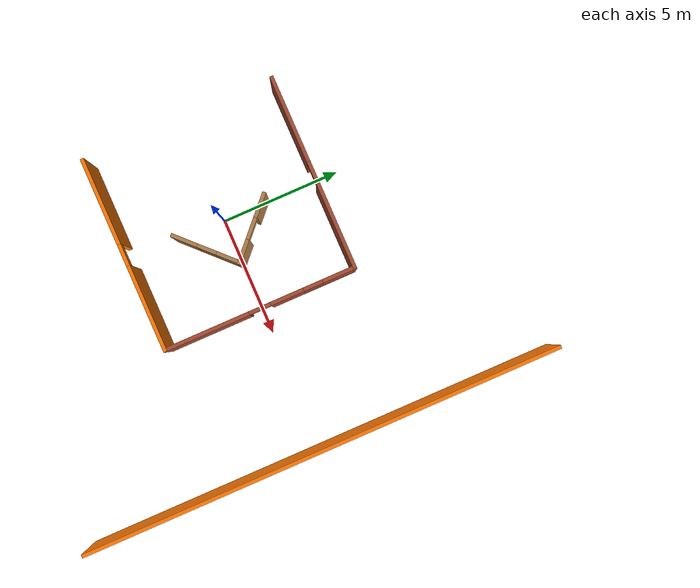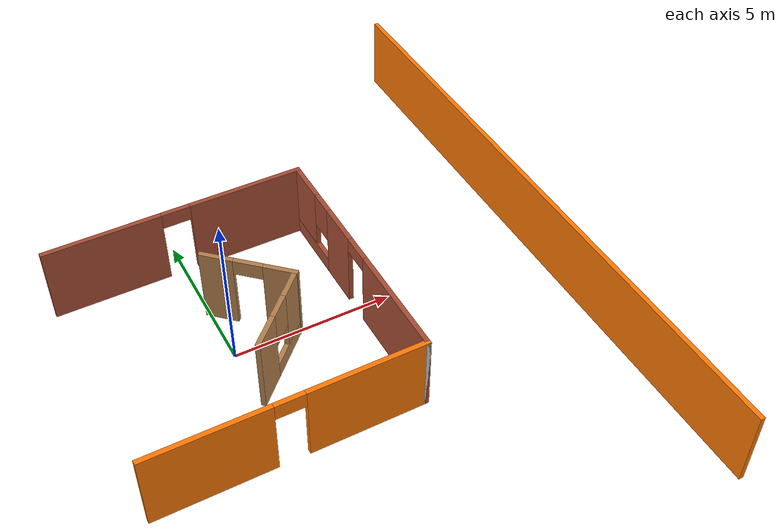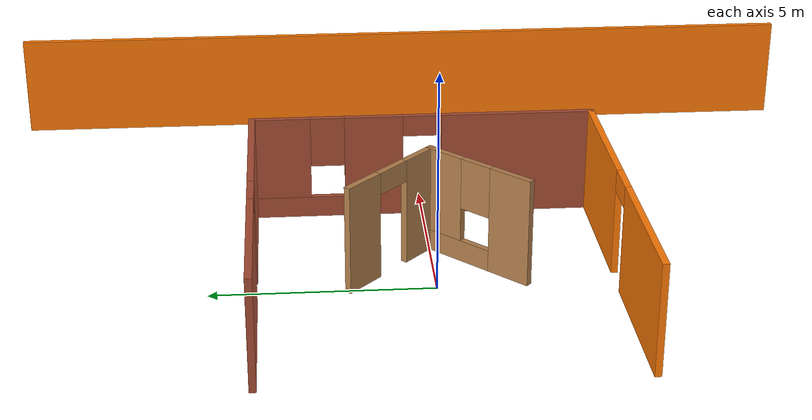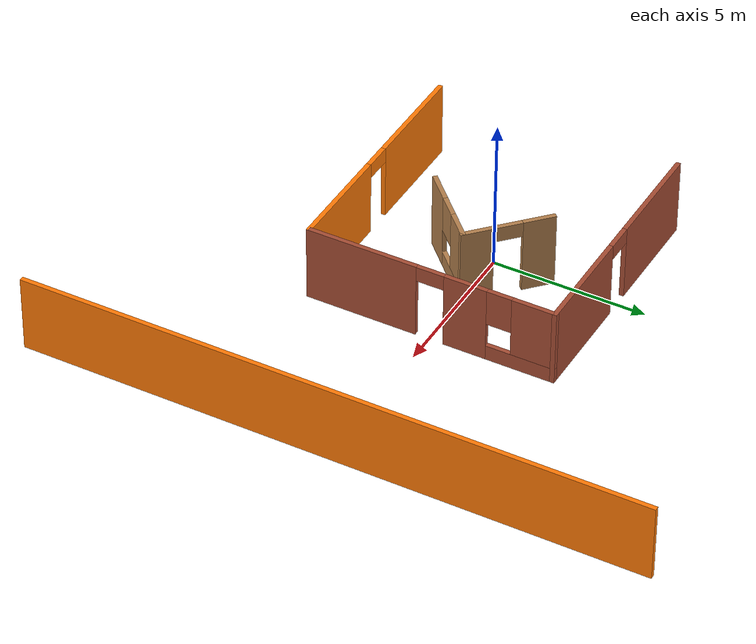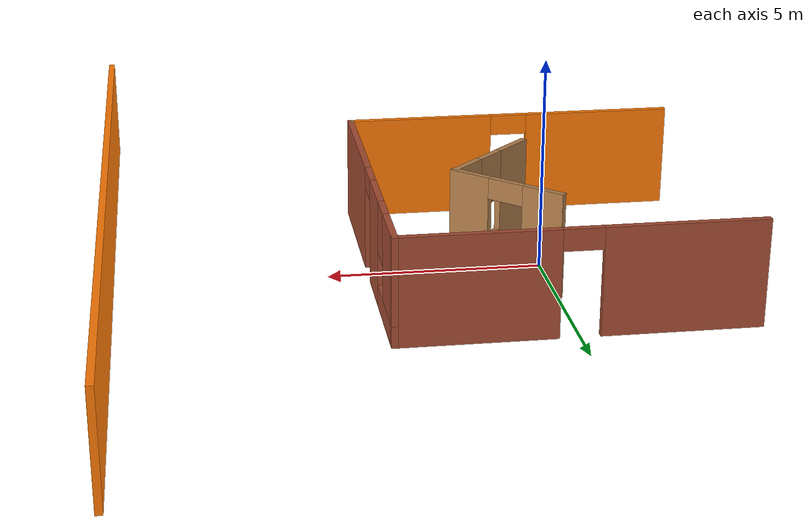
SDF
<sdf version="1.6">
 <model name="walls">
  <link name="Wall_45">
   <pose>10 0 0 0 -0 1.5708</pose>
   <visual name="Wall_45_Visual">
    <pose>0 0 1.25 0 -0 0</pose>
    <geometry><box><size>20.15 0.15 2.5</size></box></geometry>
    <material>
     <script><uri>file://media/materials/scripts/gazebo.material</uri><name>Gazebo/Grey</name></script>
     <ambient>0.996078 0.47451 0.0196078 1</ambient>
     <shader type="pixel"/>
     <diffuse>0.7 0.7 0.7 1</diffuse>
     <specular>0.01 0.01 0.01 1</specular>
     <emissive>0 0 0 1</emissive>
    </material>
    <meta><layer>0</layer></meta>
   </visual>
   <collision name="Wall_45_Collision">
    <pose>0 0 1.25 0 -0 0</pose>
    <geometry><box><size>20.15 0.15 2.5</size></box></geometry>
    <surface>
     <friction>
      <ode><mu>1</mu><mu2>1</mu2><fdir1>0 0 0</fdir1><slip1>0</slip1><slip2>0</slip2></ode>
      <torsional>
       <coefficient>1</coefficient>
       <patch_radius>0</patch_radius>
       <surface_radius>0</surface_radius>
       <use_patch_radius>1</use_patch_radius>
       <ode><slip>0</slip></ode>
      </torsional>
     </friction>
     <bounce><restitution_coefficient>0</restitution_coefficient><threshold>1e+06</threshold></bounce>
     <contact>
      <collide_without_contact>0</collide_without_contact>
      <collide_without_contact_bitmask>1</collide_without_contact_bitmask>
      <collide_bitmask>1</collide_bitmask>
      <ode>
       <soft_cfm>0</soft_cfm>
       <soft_erp>0.2</soft_erp>
       <kp>1e+13</kp>
       <kd>1</kd>
       <max_vel>0.01</max_vel>
       <min_depth>0</min_depth>
      </ode>
      <bullet>
       <split_impulse>1</split_impulse>
       <split_impulse_penetration_threshold>-0.01</split_impulse_penetration_threshold>
       <soft_cfm>0</soft_cfm>
       <soft_erp>0.2</soft_erp>
       <kp>1e+13</kp>
       <kd>1</kd>
      </bullet>
     </contact>
    </surface>
   </collision>
  </link>
  <link name="Wall_50">
   <pose>0 -4 0 0 -0 0</pose>
   <visual name="Wall_50_Visual_0">
    <pose>-2.2625 0 1.25 0 -0 0</pose>
    <geometry><box><size>3.625 0.15 2.5</size></box></geometry>
    <material>
     <script><uri>file://media/materials/scripts/gazebo.material</uri><name>Gazebo/Grey</name></script>
     <ambient>0.996078 0.47451 0.0196078 1</ambient>
     <shader type="pixel"/>
     <diffuse>0.7 0.7 0.7 1</diffuse>
     <specular>0.01 0.01 0.01 1</specular>
     <emissive>0 0 0 1</emissive>
    </material>
    <meta><layer>0</layer></meta>
   </visual>
   <visual name="Wall_50_Visual_1">
    <pose>2.2625 0 1.25 0 -0 0</pose>
    <geometry><box><size>3.625 0.15 2.5</size></box></geometry>
    <material>
     <script><uri>file://media/materials/scripts/gazebo.material</uri><name>Gazebo/Grey</name></script>
     <ambient>0.996078 0.47451 0.0196078 1</ambient>
     <shader type="pixel"/>
     <diffuse>0.7 0.7 0.7 1</diffuse>
     <specular>0.01 0.01 0.01 1</specular>
     <emissive>0 0 0 1</emissive>
    </material>
    <meta><layer>0</layer></meta>
   </visual>
   <visual name="Wall_50_Visual_2">
    <pose>0 0 2.25 0 -0 0</pose>
    <geometry><box><size>0.9 0.15 0.5</size></box></geometry>
    <material>
     <script><uri>file://media/materials/scripts/gazebo.material</uri><name>Gazebo/Grey</name></script>
     <ambient>0.996078 0.47451 0.0196078 1</ambient>
     <shader type="pixel"/>
     <diffuse>0.7 0.7 0.7 1</diffuse>
     <specular>0.01 0.01 0.01 1</specular>
     <emissive>0 0 0 1</emissive>
    </material>
    <meta><layer>0</layer></meta>
   </visual>
   <collision name="Wall_50_Collision_0">
    <pose>-2.2625 0 1.25 0 -0 0</pose>
    <geometry><box><size>3.625 0.15 2.5</size></box></geometry>
    <surface>
     <friction>
      <ode><mu>1</mu><mu2>1</mu2><fdir1>0 0 0</fdir1><slip1>0</slip1><slip2>0</slip2></ode>
      <torsional>
       <coefficient>1</coefficient>
       <patch_radius>0</patch_radius>
       <surface_radius>0</surface_radius>
       <use_patch_radius>1</use_patch_radius>
       <ode><slip>0</slip></ode>
      </torsional>
     </friction>
     <bounce><restitution_coefficient>0</restitution_coefficient><threshold>1e+06</threshold></bounce>
     <contact>
      <collide_without_contact>0</collide_without_contact>
      <collide_without_contact_bitmask>1</collide_without_contact_bitmask>
      <collide_bitmask>1</collide_bitmask>
      <ode>
       <soft_cfm>0</soft_cfm>
       <soft_erp>0.2</soft_erp>
       <kp>1e+13</kp>
       <kd>1</kd>
       <max_vel>0.01</max_vel>
       <min_depth>0</min_depth>
      </ode>
      <bullet>
       <split_impulse>1</split_impulse>
       <split_impulse_penetration_threshold>-0.01</split_impulse_penetration_threshold>
       <soft_cfm>0</soft_cfm>
       <soft_erp>0.2</soft_erp>
       <kp>1e+13</kp>
       <kd>1</kd>
      </bullet>
     </contact>
    </surface>
   </collision>
   <collision name="Wall_50_Collision_1">
    <pose>2.2625 0 1.25 0 -0 0</pose>
    <geometry><box><size>3.625 0.15 2.5</size></box></geometry>
    <surface>
     <friction>
      <ode><mu>1</mu><mu2>1</mu2><fdir1>0 0 0</fdir1><slip1>0</slip1><slip2>0</slip2></ode>
      <torsional>
       <coefficient>1</coefficient>
       <patch_radius>0</patch_radius>
       <surface_radius>0</surface_radius>
       <use_patch_radius>1</use_patch_radius>
       <ode><slip>0</slip></ode>
      </torsional>
     </friction>
     <bounce><restitution_coefficient>0</restitution_coefficient><threshold>1e+06</threshold></bounce>
     <contact>
      <collide_without_contact>0</collide_without_contact>
      <collide_without_contact_bitmask>1</collide_without_contact_bitmask>
      <collide_bitmask>1</collide_bitmask>
      <ode>
       <soft_cfm>0</soft_cfm>
       <soft_erp>0.2</soft_erp>
       <kp>1e+13</kp>
       <kd>1</kd>
       <max_vel>0.01</max_vel>
       <min_depth>0</min_depth>
      </ode>
      <bullet>
       <split_impulse>1</split_impulse>
       <split_impulse_penetration_threshold>-0.01</split_impulse_penetration_threshold>
       <soft_cfm>0</soft_cfm>
       <soft_erp>0.2</soft_erp>
       <kp>1e+13</kp>
       <kd>1</kd>
      </bullet>
     </contact>
    </surface>
   </collision>
   <collision name="Wall_50_Collision_2">
    <pose>0 0 2.25 0 -0 0</pose>
    <geometry><box><size>0.9 0.15 0.5</size></box></geometry>
    <surface>
     <friction>
      <ode><mu>1</mu><mu2>1</mu2><fdir1>0 0 0</fdir1><slip1>0</slip1><slip2>0</slip2></ode>
      <torsional>
       <coefficient>1</coefficient>
       <patch_radius>0</patch_radius>
       <surface_radius>0</surface_radius>
       <use_patch_radius>1</use_patch_radius>
       <ode><slip>0</slip></ode>
      </torsional>
     </friction>
     <bounce><restitution_coefficient>0</restitution_coefficient><threshold>1e+06</threshold></bounce>
     <contact>
      <collide_without_contact>0</collide_without_contact>
      <collide_without_contact_bitmask>1</collide_without_contact_bitmask>
      <collide_bitmask>1</collide_bitmask>
      <ode>
       <soft_cfm>0</soft_cfm>
       <soft_erp>0.2</soft_erp>
       <kp>1e+13</kp>
       <kd>1</kd>
       <max_vel>0.01</max_vel>
       <min_depth>0</min_depth>
      </ode>
      <bullet>
       <split_impulse>1</split_impulse>
       <split_impulse_penetration_threshold>-0.01</split_impulse_penetration_threshold>
       <soft_cfm>0</soft_cfm>
       <soft_erp>0.2</soft_erp>
       <kp>1e+13</kp>
       <kd>1</kd>
      </bullet>
     </contact>
    </surface>
   </collision>
  </link>
  <link name="Wall_51">
   <pose>4 -4 0 0 -0 0</pose>
   <visual name="Wall_51_Visual">
    <pose>0 0 1.25 0 -0 0</pose>
    <geometry><box><size>0.15 0.15 2.5</size></box></geometry>
    <material>
     <script><uri>file://media/materials/scripts/gazebo.material</uri><name>Gazebo/CeilingTiled</name></script>
     <ambient>0.435294 0.796078 0.67451 1</ambient>
     <shader type="pixel"/>
     <diffuse>1 1 1 1</diffuse>
     <specular>0 0 0 1</specular>
     <emissive>0 0 0 1</emissive>
    </material>
    <meta><layer>0</layer></meta>
   </visual>
   <collision name="Wall_51_Collision">
    <pose>0 0 1.25 0 -0 0</pose>
    <geometry><box><size>0.15 0.15 2.5</size></box></geometry>
    <surface>
     <friction>
      <ode><mu>1</mu><mu2>1</mu2><fdir1>0 0 0</fdir1><slip1>0</slip1><slip2>0</slip2></ode>
      <torsional>
       <coefficient>1</coefficient>
       <patch_radius>0</patch_radius>
       <surface_radius>0</surface_radius>
       <use_patch_radius>1</use_patch_radius>
       <ode><slip>0</slip></ode>
      </torsional>
     </friction>
     <bounce><restitution_coefficient>0</restitution_coefficient><threshold>1e+06</threshold></bounce>
     <contact>
      <collide_without_contact>0</collide_without_contact>
      <collide_without_contact_bitmask>1</collide_without_contact_bitmask>
      <collide_bitmask>1</collide_bitmask>
      <ode>
       <soft_cfm>0</soft_cfm>
       <soft_erp>0.2</soft_erp>
       <kp>1e+13</kp>
       <kd>1</kd>
       <max_vel>0.01</max_vel>
       <min_depth>0</min_depth>
      </ode>
      <bullet>
       <split_impulse>1</split_impulse>
       <split_impulse_penetration_threshold>-0.01</split_impulse_penetration_threshold>
       <soft_cfm>0</soft_cfm>
       <soft_erp>0.2</soft_erp>
       <kp>1e+13</kp>
       <kd>1</kd>
      </bullet>
     </contact>
    </surface>
   </collision>
  </link>
  <link name="Wall_52">
   <pose>4 0 0 0 -0 1.5708</pose>
   <visual name="Wall_52_Visual_0">
    <pose>-2.2608 0 1.25 0 -0 0</pose>
    <geometry><box><size>3.6284 0.15 2.5</size></box></geometry>
    <material>
     <script><uri>file://media/materials/scripts/gazebo.material</uri><name>Gazebo/Bricks</name></script>
     <ambient>1 1 1 1</ambient>
     <shader type="pixel"/>
     <diffuse>1 1 1 1</diffuse>
     <specular>0.2 0.2 0.2 1</specular>
     <emissive>0 0 0 1</emissive>
    </material>
    <meta><layer>0</layer></meta>
   </visual>
   <visual name="Wall_52_Visual_1">
    <pose>1.14751 0 1.25 0 -0 0</pose>
    <geometry><box><size>1.38822 0.15 2.5</size></box></geometry>
    <material>
     <script><uri>file://media/materials/scripts/gazebo.material</uri><name>Gazebo/Bricks</name></script>
     <ambient>1 1 1 1</ambient>
     <shader type="pixel"/>
     <diffuse>1 1 1 1</diffuse>
     <specular>0.2 0.2 0.2 1</specular>
     <emissive>0 0 0 1</emissive>
    </material>
    <meta><layer>0</layer></meta>
   </visual>
   <visual name="Wall_52_Visual_2">
    <pose>2.95831 0 0.25 0 -0 0</pose>
    <geometry><box><size>2.23338 0.15 0.5</size></box></geometry>
    <material>
     <script><uri>file://media/materials/scripts/gazebo.material</uri><name>Gazebo/Bricks</name></script>
     <ambient>1 1 1 1</ambient>
     <shader type="pixel"/>
     <diffuse>1 1 1 1</diffuse>
     <specular>0.2 0.2 0.2 1</specular>
     <emissive>0 0 0 1</emissive>
    </material>
    <meta><layer>0</layer></meta>
   </visual>
   <visual name="Wall_52_Visual_3">
    <pose>3.35831 0 1.5 0 -0 0</pose>
    <geometry><box><size>1.43338 0.15 2</size></box></geometry>
    <material>
     <script><uri>file://media/materials/scripts/gazebo.material</uri><name>Gazebo/Bricks</name></script>
     <ambient>1 1 1 1</ambient>
     <shader type="pixel"/>
     <diffuse>1 1 1 1</diffuse>
     <specular>0.2 0.2 0.2 1</specular>
     <emissive>0 0 0 1</emissive>
    </material>
    <meta><layer>0</layer></meta>
   </visual>
   <visual name="Wall_52_Visual_4">
    <pose>2.24162 0 1.9 0 -0 0</pose>
    <geometry><box><size>0.8 0.15 1.2</size></box></geometry>
    <material>
     <script><uri>file://media/materials/scripts/gazebo.material</uri><name>Gazebo/Bricks</name></script>
     <ambient>1 1 1 1</ambient>
     <shader type="pixel"/>
     <diffuse>1 1 1 1</diffuse>
     <specular>0.2 0.2 0.2 1</specular>
     <emissive>0 0 0 1</emissive>
    </material>
    <meta><layer>0</layer></meta>
   </visual>
   <visual name="Wall_52_Visual_5">
    <pose>0.003404 0 2.25 0 -0 0</pose>
    <geometry><box><size>0.9 0.15 0.5</size></box></geometry>
    <material>
     <script><uri>file://media/materials/scripts/gazebo.material</uri><name>Gazebo/Bricks</name></script>
     <ambient>1 1 1 1</ambient>
     <shader type="pixel"/>
     <diffuse>1 1 1 1</diffuse>
     <specular>0.2 0.2 0.2 1</specular>
     <emissive>0 0 0 1</emissive>
    </material>
    <meta><layer>0</layer></meta>
   </visual>
   <collision name="Wall_52_Collision_0">
    <pose>-2.2608 0 1.25 0 -0 0</pose>
    <geometry><box><size>3.6284 0.15 2.5</size></box></geometry>
    <surface>
     <friction>
      <ode><mu>1</mu><mu2>1</mu2><fdir1>0 0 0</fdir1><slip1>0</slip1><slip2>0</slip2></ode>
      <torsional>
       <coefficient>1</coefficient>
       <patch_radius>0</patch_radius>
       <surface_radius>0</surface_radius>
       <use_patch_radius>1</use_patch_radius>
       <ode><slip>0</slip></ode>
      </torsional>
     </friction>
     <bounce><restitution_coefficient>0</restitution_coefficient><threshold>1e+06</threshold></bounce>
     <contact>
      <collide_without_contact>0</collide_without_contact>
      <collide_without_contact_bitmask>1</collide_without_contact_bitmask>
      <collide_bitmask>1</collide_bitmask>
      <ode>
       <soft_cfm>0</soft_cfm>
       <soft_erp>0.2</soft_erp>
       <kp>1e+13</kp>
       <kd>1</kd>
       <max_vel>0.01</max_vel>
       <min_depth>0</min_depth>
      </ode>
      <bullet>
       <split_impulse>1</split_impulse>
       <split_impulse_penetration_threshold>-0.01</split_impulse_penetration_threshold>
       <soft_cfm>0</soft_cfm>
       <soft_erp>0.2</soft_erp>
       <kp>1e+13</kp>
       <kd>1</kd>
      </bullet>
     </contact>
    </surface>
   </collision>
   <collision name="Wall_52_Collision_1">
    <pose>1.14751 0 1.25 0 -0 0</pose>
    <geometry><box><size>1.38822 0.15 2.5</size></box></geometry>
    <surface>
     <friction>
      <ode><mu>1</mu><mu2>1</mu2><fdir1>0 0 0</fdir1><slip1>0</slip1><slip2>0</slip2></ode>
      <torsional>
       <coefficient>1</coefficient>
       <patch_radius>0</patch_radius>
       <surface_radius>0</surface_radius>
       <use_patch_radius>1</use_patch_radius>
       <ode><slip>0</slip></ode>
      </torsional>
     </friction>
     <bounce><restitution_coefficient>0</restitution_coefficient><threshold>1e+06</threshold></bounce>
     <contact>
      <collide_without_contact>0</collide_without_contact>
      <collide_without_contact_bitmask>1</collide_without_contact_bitmask>
      <collide_bitmask>1</collide_bitmask>
      <ode>
       <soft_cfm>0</soft_cfm>
       <soft_erp>0.2</soft_erp>
       <kp>1e+13</kp>
       <kd>1</kd>
       <max_vel>0.01</max_vel>
       <min_depth>0</min_depth>
      </ode>
      <bullet>
       <split_impulse>1</split_impulse>
       <split_impulse_penetration_threshold>-0.01</split_impulse_penetration_threshold>
       <soft_cfm>0</soft_cfm>
       <soft_erp>0.2</soft_erp>
       <kp>1e+13</kp>
       <kd>1</kd>
      </bullet>
     </contact>
    </surface>
   </collision>
   <collision name="Wall_52_Collision_2">
    <pose>2.95831 0 0.25 0 -0 0</pose>
    <geometry><box><size>2.23338 0.15 0.5</size></box></geometry>
    <surface>
     <friction>
      <ode><mu>1</mu><mu2>1</mu2><fdir1>0 0 0</fdir1><slip1>0</slip1><slip2>0</slip2></ode>
      <torsional>
       <coefficient>1</coefficient>
       <patch_radius>0</patch_radius>
       <surface_radius>0</surface_radius>
       <use_patch_radius>1</use_patch_radius>
       <ode><slip>0</slip></ode>
      </torsional>
     </friction>
     <bounce><restitution_coefficient>0</restitution_coefficient><threshold>1e+06</threshold></bounce>
     <contact>
      <collide_without_contact>0</collide_without_contact>
      <collide_without_contact_bitmask>1</collide_without_contact_bitmask>
      <collide_bitmask>1</collide_bitmask>
      <ode>
       <soft_cfm>0</soft_cfm>
       <soft_erp>0.2</soft_erp>
       <kp>1e+13</kp>
       <kd>1</kd>
       <max_vel>0.01</max_vel>
       <min_depth>0</min_depth>
      </ode>
      <bullet>
       <split_impulse>1</split_impulse>
       <split_impulse_penetration_threshold>-0.01</split_impulse_penetration_threshold>
       <soft_cfm>0</soft_cfm>
       <soft_erp>0.2</soft_erp>
       <kp>1e+13</kp>
       <kd>1</kd>
      </bullet>
     </contact>
    </surface>
   </collision>
   <collision name="Wall_52_Collision_3">
    <pose>3.35831 0 1.5 0 -0 0</pose>
    <geometry><box><size>1.43338 0.15 2</size></box></geometry>
    <surface>
     <friction>
      <ode><mu>1</mu><mu2>1</mu2><fdir1>0 0 0</fdir1><slip1>0</slip1><slip2>0</slip2></ode>
      <torsional>
       <coefficient>1</coefficient>
       <patch_radius>0</patch_radius>
       <surface_radius>0</surface_radius>
       <use_patch_radius>1</use_patch_radius>
       <ode><slip>0</slip></ode>
      </torsional>
     </friction>
     <bounce><restitution_coefficient>0</restitution_coefficient><threshold>1e+06</threshold></bounce>
     <contact>
      <collide_without_contact>0</collide_without_contact>
      <collide_without_contact_bitmask>1</collide_without_contact_bitmask>
      <collide_bitmask>1</collide_bitmask>
      <ode>
       <soft_cfm>0</soft_cfm>
       <soft_erp>0.2</soft_erp>
       <kp>1e+13</kp>
       <kd>1</kd>
       <max_vel>0.01</max_vel>
       <min_depth>0</min_depth>
      </ode>
      <bullet>
       <split_impulse>1</split_impulse>
       <split_impulse_penetration_threshold>-0.01</split_impulse_penetration_threshold>
       <soft_cfm>0</soft_cfm>
       <soft_erp>0.2</soft_erp>
       <kp>1e+13</kp>
       <kd>1</kd>
      </bullet>
     </contact>
    </surface>
   </collision>
   <collision name="Wall_52_Collision_5">
    <pose>0.003404 0 2.25 0 -0 0</pose>
    <geometry><box><size>0.9 0.15 0.5</size></box></geometry>
    <surface>
     <friction>
      <ode><mu>1</mu><mu2>1</mu2><fdir1>0 0 0</fdir1><slip1>0</slip1><slip2>0</slip2></ode>
      <torsional>
       <coefficient>1</coefficient>
       <patch_radius>0</patch_radius>
       <surface_radius>0</surface_radius>
       <use_patch_radius>1</use_patch_radius>
       <ode><slip>0</slip></ode>
      </torsional>
     </friction>
     <bounce><restitution_coefficient>0</restitution_coefficient><threshold>1e+06</threshold></bounce>
     <contact>
      <collide_without_contact>0</collide_without_contact>
      <collide_without_contact_bitmask>1</collide_without_contact_bitmask>
      <collide_bitmask>1</collide_bitmask>
      <ode>
       <soft_cfm>0</soft_cfm>
       <soft_erp>0.2</soft_erp>
       <kp>1e+13</kp>
       <kd>1</kd>
       <max_vel>0.01</max_vel>
       <min_depth>0</min_depth>
      </ode>
      <bullet>
       <split_impulse>1</split_impulse>
       <split_impulse_penetration_threshold>-0.01</split_impulse_penetration_threshold>
       <soft_cfm>0</soft_cfm>
       <soft_erp>0.2</soft_erp>
       <kp>1e+13</kp>
       <kd>1</kd>
      </bullet>
     </contact>
    </surface>
   </collision>
   <collision name="Wall_52_Collision_4">
    <pose>2.24162 0 1.9 0 -0 0</pose>
    <geometry><box><size>0.8 0.15 1.2</size></box></geometry>
    <surface>
     <friction>
      <ode><mu>1</mu><mu2>1</mu2><fdir1>0 0 0</fdir1><slip1>0</slip1><slip2>0</slip2></ode>
      <torsional>
       <coefficient>1</coefficient>
       <patch_radius>0</patch_radius>
       <surface_radius>0</surface_radius>
       <use_patch_radius>1</use_patch_radius>
       <ode><slip>0</slip></ode>
      </torsional>
     </friction>
     <bounce><restitution_coefficient>0</restitution_coefficient><threshold>1e+06</threshold></bounce>
     <contact>
      <collide_without_contact>0</collide_without_contact>
      <collide_without_contact_bitmask>1</collide_without_contact_bitmask>
      <collide_bitmask>1</collide_bitmask>
      <ode>
       <soft_cfm>0</soft_cfm>
       <soft_erp>0.2</soft_erp>
       <kp>1e+13</kp>
       <kd>1</kd>
       <max_vel>0.01</max_vel>
       <min_depth>0</min_depth>
      </ode>
      <bullet>
       <split_impulse>1</split_impulse>
       <split_impulse_penetration_threshold>-0.01</split_impulse_penetration_threshold>
       <soft_cfm>0</soft_cfm>
       <soft_erp>0.2</soft_erp>
       <kp>1e+13</kp>
       <kd>1</kd>
      </bullet>
     </contact>
    </surface>
   </collision>
  </link>
  <link name="Wall_54">
   <pose>0 4 0 0 -0 3.14159</pose>
   <visual name="Wall_54_Visual_0">
    <pose>-2.2625 0 1.25 0 -0 0</pose>
    <geometry><box><size>3.625 0.15 2.5</size></box></geometry>
    <material>
     <script><uri>file://media/materials/scripts/gazebo.material</uri><name>Gazebo/Bricks</name></script>
     <ambient>1 1 1 1</ambient>
     <shader type="pixel"/>
     <diffuse>1 1 1 1</diffuse>
     <specular>0.2 0.2 0.2 1</specular>
     <emissive>0 0 0 1</emissive>
    </material>
    <meta><layer>0</layer></meta>
   </visual>
   <visual name="Wall_54_Visual_1">
    <pose>2.2625 0 1.25 0 -0 0</pose>
    <geometry><box><size>3.625 0.15 2.5</size></box></geometry>
    <material>
     <script><uri>file://media/materials/scripts/gazebo.material</uri><name>Gazebo/Bricks</name></script>
     <ambient>1 1 1 1</ambient>
     <shader type="pixel"/>
     <diffuse>1 1 1 1</diffuse>
     <specular>0.2 0.2 0.2 1</specular>
     <emissive>0 0 0 1</emissive>
    </material>
    <meta><layer>0</layer></meta>
   </visual>
   <visual name="Wall_54_Visual_2">
    <pose>0 0 2.25 0 -0 0</pose>
    <geometry><box><size>0.9 0.15 0.5</size></box></geometry>
    <material>
     <script><uri>file://media/materials/scripts/gazebo.material</uri><name>Gazebo/Bricks</name></script>
     <ambient>1 1 1 1</ambient>
     <shader type="pixel"/>
     <diffuse>1 1 1 1</diffuse>
     <specular>0.2 0.2 0.2 1</specular>
     <emissive>0 0 0 1</emissive>
    </material>
    <meta><layer>0</layer></meta>
   </visual>
   <collision name="Wall_54_Collision_0">
    <pose>-2.2625 0 1.25 0 -0 0</pose>
    <geometry><box><size>3.625 0.15 2.5</size></box></geometry>
    <surface>
     <friction>
      <ode><mu>1</mu><mu2>1</mu2><fdir1>0 0 0</fdir1><slip1>0</slip1><slip2>0</slip2></ode>
      <torsional>
       <coefficient>1</coefficient>
       <patch_radius>0</patch_radius>
       <surface_radius>0</surface_radius>
       <use_patch_radius>1</use_patch_radius>
       <ode><slip>0</slip></ode>
      </torsional>
     </friction>
     <bounce><restitution_coefficient>0</restitution_coefficient><threshold>1e+06</threshold></bounce>
     <contact>
      <collide_without_contact>0</collide_without_contact>
      <collide_without_contact_bitmask>1</collide_without_contact_bitmask>
      <collide_bitmask>1</collide_bitmask>
      <ode>
       <soft_cfm>0</soft_cfm>
       <soft_erp>0.2</soft_erp>
       <kp>1e+13</kp>
       <kd>1</kd>
       <max_vel>0.01</max_vel>
       <min_depth>0</min_depth>
      </ode>
      <bullet>
       <split_impulse>1</split_impulse>
       <split_impulse_penetration_threshold>-0.01</split_impulse_penetration_threshold>
       <soft_cfm>0</soft_cfm>
       <soft_erp>0.2</soft_erp>
       <kp>1e+13</kp>
       <kd>1</kd>
      </bullet>
     </contact>
    </surface>
   </collision>
   <collision name="Wall_54_Collision_1">
    <pose>2.2625 0 1.25 0 -0 0</pose>
    <geometry><box><size>3.625 0.15 2.5</size></box></geometry>
    <surface>
     <friction>
      <ode><mu>1</mu><mu2>1</mu2><fdir1>0 0 0</fdir1><slip1>0</slip1><slip2>0</slip2></ode>
      <torsional>
       <coefficient>1</coefficient>
       <patch_radius>0</patch_radius>
       <surface_radius>0</surface_radius>
       <use_patch_radius>1</use_patch_radius>
       <ode><slip>0</slip></ode>
      </torsional>
     </friction>
     <bounce><restitution_coefficient>0</restitution_coefficient><threshold>1e+06</threshold></bounce>
     <contact>
      <collide_without_contact>0</collide_without_contact>
      <collide_without_contact_bitmask>1</collide_without_contact_bitmask>
      <collide_bitmask>1</collide_bitmask>
      <ode>
       <soft_cfm>0</soft_cfm>
       <soft_erp>0.2</soft_erp>
       <kp>1e+13</kp>
       <kd>1</kd>
       <max_vel>0.01</max_vel>
       <min_depth>0</min_depth>
      </ode>
      <bullet>
       <split_impulse>1</split_impulse>
       <split_impulse_penetration_threshold>-0.01</split_impulse_penetration_threshold>
       <soft_cfm>0</soft_cfm>
       <soft_erp>0.2</soft_erp>
       <kp>1e+13</kp>
       <kd>1</kd>
      </bullet>
     </contact>
    </surface>
   </collision>
   <collision name="Wall_54_Collision_2">
    <pose>0 0 2.25 0 -0 0</pose>
    <geometry><box><size>0.9 0.15 0.5</size></box></geometry>
    <surface>
     <friction>
      <ode><mu>1</mu><mu2>1</mu2><fdir1>0 0 0</fdir1><slip1>0</slip1><slip2>0</slip2></ode>
      <torsional>
       <coefficient>1</coefficient>
       <patch_radius>0</patch_radius>
       <surface_radius>0</surface_radius>
       <use_patch_radius>1</use_patch_radius>
       <ode><slip>0</slip></ode>
      </torsional>
     </friction>
     <bounce><restitution_coefficient>0</restitution_coefficient><threshold>1e+06</threshold></bounce>
     <contact>
      <collide_without_contact>0</collide_without_contact>
      <collide_without_contact_bitmask>1</collide_without_contact_bitmask>
      <collide_bitmask>1</collide_bitmask>
      <ode>
       <soft_cfm>0</soft_cfm>
       <soft_erp>0.2</soft_erp>
       <kp>1e+13</kp>
       <kd>1</kd>
       <max_vel>0.01</max_vel>
       <min_depth>0</min_depth>
      </ode>
      <bullet>
       <split_impulse>1</split_impulse>
       <split_impulse_penetration_threshold>-0.01</split_impulse_penetration_threshold>
       <soft_cfm>0</soft_cfm>
       <soft_erp>0.2</soft_erp>
       <kp>1e+13</kp>
       <kd>1</kd>
      </bullet>
     </contact>
    </surface>
   </collision>
  </link>
  <link name="Wall_60">
   <pose>1.04341 -0.990461 0 0 -0 0.779305</pose>
   <visual name="Wall_60_Visual_0">
    <pose>-0.909688 0 1.25 0 -0 0</pose>
    <geometry><box><size>1.09783 0.15 2.5</size></box></geometry>
    <material>
     <script><uri>file://media/materials/scripts/gazebo.material</uri><name>Gazebo/Wood</name></script>
     <ambient>0.333333 0 1 1</ambient>
     <shader type="pixel"/>
     <diffuse>1 1 1 1</diffuse>
     <specular>0.2 0.2 0.2 1</specular>
     <emissive>0 0 0 1</emissive>
    </material>
    <meta><layer>0</layer></meta>
   </visual>
   <visual name="Wall_60_Visual_1">
    <pose>0.548916 0 0.25 0 -0 0</pose>
    <geometry><box><size>1.81938 0.15 0.5</size></box></geometry>
    <material>
     <script><uri>file://media/materials/scripts/gazebo.material</uri><name>Gazebo/Wood</name></script>
     <ambient>0.333333 0 1 1</ambient>
     <shader type="pixel"/>
     <diffuse>1 1 1 1</diffuse>
     <specular>0.2 0.2 0.2 1</specular>
     <emissive>0 0 0 1</emissive>
    </material>
    <meta><layer>0</layer></meta>
   </visual>
   <visual name="Wall_60_Visual_2">
    <pose>0.948916 0 1.5 0 -0 0</pose>
    <geometry><box><size>1.01938 0.15 2</size></box></geometry>
    <material>
     <script><uri>file://media/materials/scripts/gazebo.material</uri><name>Gazebo/Wood</name></script>
     <ambient>0.333333 0 1 1</ambient>
     <shader type="pixel"/>
     <diffuse>1 1 1 1</diffuse>
     <specular>0.2 0.2 0.2 1</specular>
     <emissive>0 0 0 1</emissive>
    </material>
    <meta><layer>0</layer></meta>
   </visual>
   <visual name="Wall_60_Visual_3">
    <pose>0.039229 0 1.9 0 -0 0</pose>
    <geometry><box><size>0.8 0.15 1.2</size></box></geometry>
    <material>
     <script><uri>file://media/materials/scripts/gazebo.material</uri><name>Gazebo/Wood</name></script>
     <ambient>0.333333 0 1 1</ambient>
     <shader type="pixel"/>
     <diffuse>1 1 1 1</diffuse>
     <specular>0.2 0.2 0.2 1</specular>
     <emissive>0 0 0 1</emissive>
    </material>
    <meta><layer>0</layer></meta>
   </visual>
   <collision name="Wall_60_Collision_0">
    <pose>-0.909688 0 1.25 0 -0 0</pose>
    <geometry><box><size>1.09783 0.15 2.5</size></box></geometry>
    <surface>
     <friction>
      <ode><mu>1</mu><mu2>1</mu2><fdir1>0 0 0</fdir1><slip1>0</slip1><slip2>0</slip2></ode>
      <torsional>
       <coefficient>1</coefficient>
       <patch_radius>0</patch_radius>
       <surface_radius>0</surface_radius>
       <use_patch_radius>1</use_patch_radius>
       <ode><slip>0</slip></ode>
      </torsional>
     </friction>
     <bounce><restitution_coefficient>0</restitution_coefficient><threshold>1e+06</threshold></bounce>
     <contact>
      <collide_without_contact>0</collide_without_contact>
      <collide_without_contact_bitmask>1</collide_without_contact_bitmask>
      <collide_bitmask>1</collide_bitmask>
      <ode>
       <soft_cfm>0</soft_cfm>
       <soft_erp>0.2</soft_erp>
       <kp>1e+13</kp>
       <kd>1</kd>
       <max_vel>0.01</max_vel>
       <min_depth>0</min_depth>
      </ode>
      <bullet>
       <split_impulse>1</split_impulse>
       <split_impulse_penetration_threshold>-0.01</split_impulse_penetration_threshold>
       <soft_cfm>0</soft_cfm>
       <soft_erp>0.2</soft_erp>
       <kp>1e+13</kp>
       <kd>1</kd>
      </bullet>
     </contact>
    </surface>
   </collision>
   <collision name="Wall_60_Collision_1">
    <pose>0.548916 0 0.25 0 -0 0</pose>
    <geometry><box><size>1.81938 0.15 0.5</size></box></geometry>
    <surface>
     <friction>
      <ode><mu>1</mu><mu2>1</mu2><fdir1>0 0 0</fdir1><slip1>0</slip1><slip2>0</slip2></ode>
      <torsional>
       <coefficient>1</coefficient>
       <patch_radius>0</patch_radius>
       <surface_radius>0</surface_radius>
       <use_patch_radius>1</use_patch_radius>
       <ode><slip>0</slip></ode>
      </torsional>
     </friction>
     <bounce><restitution_coefficient>0</restitution_coefficient><threshold>1e+06</threshold></bounce>
     <contact>
      <collide_without_contact>0</collide_without_contact>
      <collide_without_contact_bitmask>1</collide_without_contact_bitmask>
      <collide_bitmask>1</collide_bitmask>
      <ode>
       <soft_cfm>0</soft_cfm>
       <soft_erp>0.2</soft_erp>
       <kp>1e+13</kp>
       <kd>1</kd>
       <max_vel>0.01</max_vel>
       <min_depth>0</min_depth>
      </ode>
      <bullet>
       <split_impulse>1</split_impulse>
       <split_impulse_penetration_threshold>-0.01</split_impulse_penetration_threshold>
       <soft_cfm>0</soft_cfm>
       <soft_erp>0.2</soft_erp>
       <kp>1e+13</kp>
       <kd>1</kd>
      </bullet>
     </contact>
    </surface>
   </collision>
   <collision name="Wall_60_Collision_2">
    <pose>0.948916 0 1.5 0 -0 0</pose>
    <geometry><box><size>1.01938 0.15 2</size></box></geometry>
    <surface>
     <friction>
      <ode><mu>1</mu><mu2>1</mu2><fdir1>0 0 0</fdir1><slip1>0</slip1><slip2>0</slip2></ode>
      <torsional>
       <coefficient>1</coefficient>
       <patch_radius>0</patch_radius>
       <surface_radius>0</surface_radius>
       <use_patch_radius>1</use_patch_radius>
       <ode><slip>0</slip></ode>
      </torsional>
     </friction>
     <bounce><restitution_coefficient>0</restitution_coefficient><threshold>1e+06</threshold></bounce>
     <contact>
      <collide_without_contact>0</collide_without_contact>
      <collide_without_contact_bitmask>1</collide_without_contact_bitmask>
      <collide_bitmask>1</collide_bitmask>
      <ode>
       <soft_cfm>0</soft_cfm>
       <soft_erp>0.2</soft_erp>
       <kp>1e+13</kp>
       <kd>1</kd>
       <max_vel>0.01</max_vel>
       <min_depth>0</min_depth>
      </ode>
      <bullet>
       <split_impulse>1</split_impulse>
       <split_impulse_penetration_threshold>-0.01</split_impulse_penetration_threshold>
       <soft_cfm>0</soft_cfm>
       <soft_erp>0.2</soft_erp>
       <kp>1e+13</kp>
       <kd>1</kd>
      </bullet>
     </contact>
    </surface>
   </collision>
   <collision name="Wall_60_Collision_3">
    <pose>0.039229 0 1.9 0 -0 0</pose>
    <geometry><box><size>0.8 0.15 1.2</size></box></geometry>
    <surface>
     <friction>
      <ode><mu>1</mu><mu2>1</mu2><fdir1>0 0 0</fdir1><slip1>0</slip1><slip2>0</slip2></ode>
      <torsional>
       <coefficient>1</coefficient>
       <patch_radius>0</patch_radius>
       <surface_radius>0</surface_radius>
       <use_patch_radius>1</use_patch_radius>
       <ode><slip>0</slip></ode>
      </torsional>
     </friction>
     <bounce><restitution_coefficient>0</restitution_coefficient><threshold>1e+06</threshold></bounce>
     <contact>
      <collide_without_contact>0</collide_without_contact>
      <collide_without_contact_bitmask>1</collide_without_contact_bitmask>
      <collide_bitmask>1</collide_bitmask>
      <ode>
       <soft_cfm>0</soft_cfm>
       <soft_erp>0.2</soft_erp>
       <kp>1e+13</kp>
       <kd>1</kd>
       <max_vel>0.01</max_vel>
       <min_depth>0</min_depth>
      </ode>
      <bullet>
       <split_impulse>1</split_impulse>
       <split_impulse_penetration_threshold>-0.01</split_impulse_penetration_threshold>
       <soft_cfm>0</soft_cfm>
       <soft_erp>0.2</soft_erp>
       <kp>1e+13</kp>
       <kd>1</kd>
      </bullet>
     </contact>
    </surface>
   </collision>
  </link>
  <link name="Wall_61">
   <pose>1.02035 0.946475 0 0 -0 2.38929</pose>
   <visual name="Wall_61_Visual_0">
    <pose>-0.968361 0 1.25 0 -0 0</pose>
    <geometry><box><size>1.03644 0.15 2.5</size></box></geometry>
    <material>
     <script><uri>file://media/materials/scripts/gazebo.material</uri><name>Gazebo/Wood</name></script>
     <ambient>0.333333 0 1 1</ambient>
     <shader type="pixel"/>
     <diffuse>1 1 1 1</diffuse>
     <specular>0.2 0.2 0.2 1</specular>
     <emissive>0 0 0 1</emissive>
    </material>
    <meta><layer>0</layer></meta>
   </visual>
   <visual name="Wall_61_Visual_1">
    <pose>0.968218 0 1.25 0 -0 0</pose>
    <geometry><box><size>1.03672 0.15 2.5</size></box></geometry>
    <material>
     <script><uri>file://media/materials/scripts/gazebo.material</uri><name>Gazebo/Wood</name></script>
     <ambient>0.333333 0 1 1</ambient>
     <shader type="pixel"/>
     <diffuse>1 1 1 1</diffuse>
     <specular>0.2 0.2 0.2 1</specular>
     <emissive>0 0 0 1</emissive>
    </material>
    <meta><layer>0</layer></meta>
   </visual>
   <visual name="Wall_61_Visual_2">
    <pose>-0.000142 0 2.25 0 -0 0</pose>
    <geometry><box><size>0.9 0.15 0.5</size></box></geometry>
    <material>
     <script><uri>file://media/materials/scripts/gazebo.material</uri><name>Gazebo/Wood</name></script>
     <ambient>0.333333 0 1 1</ambient>
     <shader type="pixel"/>
     <diffuse>1 1 1 1</diffuse>
     <specular>0.2 0.2 0.2 1</specular>
     <emissive>0 0 0 1</emissive>
    </material>
    <meta><layer>0</layer></meta>
   </visual>
   <collision name="Wall_61_Collision_0">
    <pose>-0.968361 0 1.25 0 -0 0</pose>
    <geometry><box><size>1.03644 0.15 2.5</size></box></geometry>
    <surface>
     <friction>
      <ode><mu>1</mu><mu2>1</mu2><fdir1>0 0 0</fdir1><slip1>0</slip1><slip2>0</slip2></ode>
      <torsional>
       <coefficient>1</coefficient>
       <patch_radius>0</patch_radius>
       <surface_radius>0</surface_radius>
       <use_patch_radius>1</use_patch_radius>
       <ode><slip>0</slip></ode>
      </torsional>
     </friction>
     <bounce><restitution_coefficient>0</restitution_coefficient><threshold>1e+06</threshold></bounce>
     <contact>
      <collide_without_contact>0</collide_without_contact>
      <collide_without_contact_bitmask>1</collide_without_contact_bitmask>
      <collide_bitmask>1</collide_bitmask>
      <ode>
       <soft_cfm>0</soft_cfm>
       <soft_erp>0.2</soft_erp>
       <kp>1e+13</kp>
       <kd>1</kd>
       <max_vel>0.01</max_vel>
       <min_depth>0</min_depth>
      </ode>
      <bullet>
       <split_impulse>1</split_impulse>
       <split_impulse_penetration_threshold>-0.01</split_impulse_penetration_threshold>
       <soft_cfm>0</soft_cfm>
       <soft_erp>0.2</soft_erp>
       <kp>1e+13</kp>
       <kd>1</kd>
      </bullet>
     </contact>
    </surface>
   </collision>
   <collision name="Wall_61_Collision_1">
    <pose>0.968218 0 1.25 0 -0 0</pose>
    <geometry><box><size>1.03672 0.15 2.5</size></box></geometry>
    <surface>
     <friction>
      <ode><mu>1</mu><mu2>1</mu2><fdir1>0 0 0</fdir1><slip1>0</slip1><slip2>0</slip2></ode>
      <torsional>
       <coefficient>1</coefficient>
       <patch_radius>0</patch_radius>
       <surface_radius>0</surface_radius>
       <use_patch_radius>1</use_patch_radius>
       <ode><slip>0</slip></ode>
      </torsional>
     </friction>
     <bounce><restitution_coefficient>0</restitution_coefficient><threshold>1e+06</threshold></bounce>
     <contact>
      <collide_without_contact>0</collide_without_contact>
      <collide_without_contact_bitmask>1</collide_without_contact_bitmask>
      <collide_bitmask>1</collide_bitmask>
      <ode>
       <soft_cfm>0</soft_cfm>
       <soft_erp>0.2</soft_erp>
       <kp>1e+13</kp>
       <kd>1</kd>
       <max_vel>0.01</max_vel>
       <min_depth>0</min_depth>
      </ode>
      <bullet>
       <split_impulse>1</split_impulse>
       <split_impulse_penetration_threshold>-0.01</split_impulse_penetration_threshold>
       <soft_cfm>0</soft_cfm>
       <soft_erp>0.2</soft_erp>
       <kp>1e+13</kp>
       <kd>1</kd>
      </bullet>
     </contact>
    </surface>
   </collision>
   <collision name="Wall_61_Collision_2">
    <pose>-0.000142 0 2.25 0 -0 0</pose>
    <geometry><box><size>0.9 0.15 0.5</size></box></geometry>
    <surface>
     <friction>
      <ode><mu>1</mu><mu2>1</mu2><fdir1>0 0 0</fdir1><slip1>0</slip1><slip2>0</slip2></ode>
      <torsional>
       <coefficient>1</coefficient>
       <patch_radius>0</patch_radius>
       <surface_radius>0</surface_radius>
       <use_patch_radius>1</use_patch_radius>
       <ode><slip>0</slip></ode>
      </torsional>
     </friction>
     <bounce><restitution_coefficient>0</restitution_coefficient><threshold>1e+06</threshold></bounce>
     <contact>
      <collide_without_contact>0</collide_without_contact>
      <collide_without_contact_bitmask>1</collide_without_contact_bitmask>
      <collide_bitmask>1</collide_bitmask>
      <ode>
       <soft_cfm>0</soft_cfm>
       <soft_erp>0.2</soft_erp>
       <kp>1e+13</kp>
       <kd>1</kd>
       <max_vel>0.01</max_vel>
       <min_depth>0</min_depth>
      </ode>
      <bullet>
       <split_impulse>1</split_impulse>
       <split_impulse_penetration_threshold>-0.01</split_impulse_penetration_threshold>
       <soft_cfm>0</soft_cfm>
       <soft_erp>0.2</soft_erp>
       <kp>1e+13</kp>
       <kd>1</kd>
      </bullet>
     </contact>
    </surface>
   </collision>
  </link>
  <static>1</static>
 </model>
</sdf>
